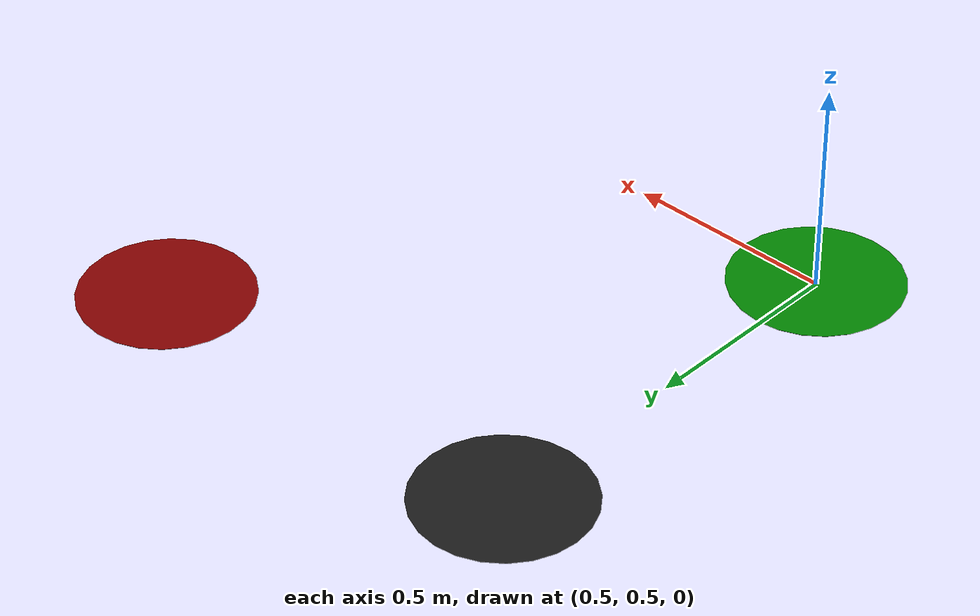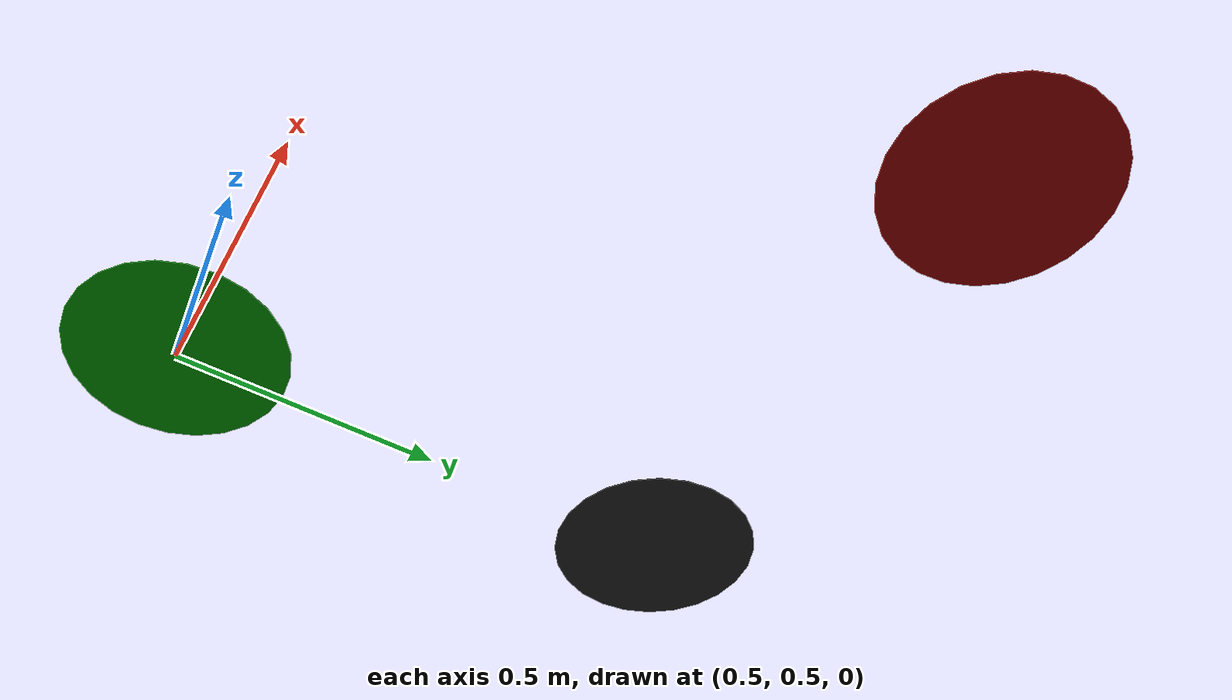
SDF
<?xml version="1.0" ?>
<sdf version="1.7">
  <model name="forest_3_ball_state_11">
    <pose>0 0 0.01 0 0 0</pose>
    <static>true</static>

    <!-- Top-left ball -->
    <link name="tree_1">
      <pose>0.5 1.5 -0.0005 0 0 0</pose>
      <visual name="tree_1_visual">
        <geometry>
          <cylinder>
            <radius>0.2</radius>
            <length>0.001</length>
          </cylinder>
        </geometry>
        <material>
          <ambient>0.1 0.1 0.1 1</ambient>
          <diffuse>0.1 0.1 0.1 1</diffuse>
        </material>
      </visual>
    </link>

    <!-- Top-right ball -->
    <link name="tree_2">
      <pose>1.5 1.5 -0.0005 0 0 0</pose>
      <visual name="tree_2_visual">
        <geometry>
          <cylinder>
            <radius>0.2</radius>
            <length>0.001</length>
          </cylinder>
        </geometry>
        <material>
          <ambient>0.5 0.0 0.0 1</ambient>
          <diffuse>0.5 0.0 0.0 1</diffuse>
        </material>
      </visual>
    </link>

    <!-- Bottom-left ball -->
    <link name="tree_3">
      <pose>0.5 0.5 -0.0005 0 0 0</pose>
      <visual name="tree_3_visual">
        <geometry>
          <cylinder>
            <radius>0.2</radius>
            <length>0.001</length>
          </cylinder>
        </geometry>
        <material>
          <ambient>0.0 0.5 0.0 1</ambient>
          <diffuse>0.0 0.5 0.0 1</diffuse>
        </material>
      </visual>
    </link>

  </model>
</sdf>
